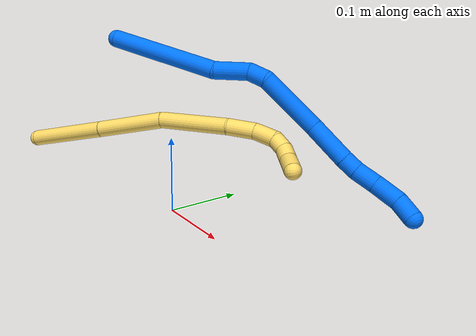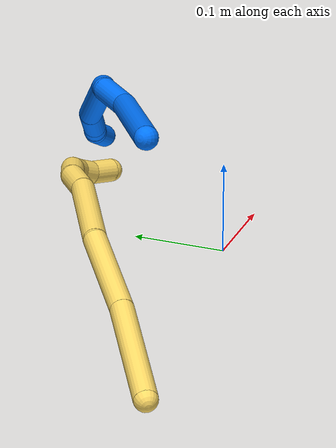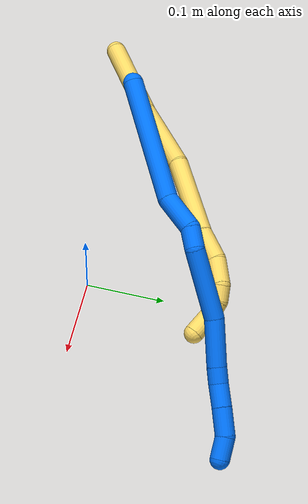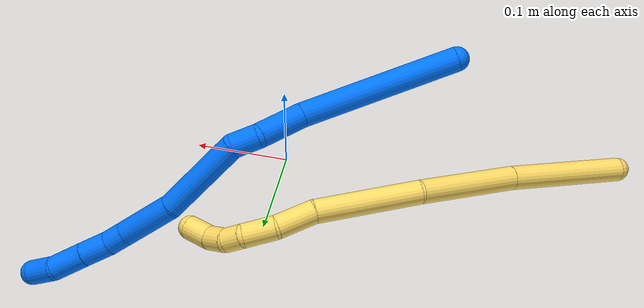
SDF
<sdf version="1.7">
 <world name="default">
  <model name="photoneo_s_sensor">
   <static>1</static>
   <pose>0 0 2 1.57079 1.57079 3.14159</pose>
   <link name="link">
    <inertial><mass>0.1</mass></inertial>
    <sensor name="sensor" type="depth">
     <update_rate>30</update_rate>
     <camera>
      <horizontal_fov>1.22</horizontal_fov>
      <image><width>1920</width><height>1200</height><format>B8G8R8</format></image>
      <clip><near>0.1</near><far>4</far></clip>
      <depth_camera><output>points</output></depth_camera>
     </camera>
     <plugin name="camera_plugin" filename="libgazebo_ros_depth_camera.so">
      <baseline>0.2</baseline>
      <alwaysOn>1</alwaysOn>
      <updateRate>0.0</updateRate>
      <cameraName>camera_ir</cameraName>
      <imageTopicName>/camera/color/image_raw</imageTopicName>
      <cameraInfoTopicName>/camera/color/camera_info</cameraInfoTopicName>
      <depthImageTopicName>/camera/depth/image_raw</depthImageTopicName>
      <depthImageCameraInfoTopicName>/camera/depth/camera_info</depthImageCameraInfoTopicName>
      <pointCloudTopicName>/camera/depth/points</pointCloudTopicName>
      <frameName>fr_optical</frameName>
      <pointCloudCutoff>0.1</pointCloudCutoff>
      <pointCloudCutoffMax>2.0</pointCloudCutoffMax>
      <distortionK1>0</distortionK1>
      <distortionK2>0</distortionK2>
      <distortionK3>0</distortionK3>
      <distortionT1>0</distortionT1>
      <distortionT2>0</distortionT2>
      <CxPrime>0</CxPrime>
      <Cx>0</Cx>
      <Cy>0</Cy>
      <focalLength>0</focalLength>
      <hackBaseline>0</hackBaseline>
     </plugin>
    </sensor>
   </link>
  </model>
  <model name="bin">
   <static>1</static>
   <link name="bottom">
    <collision name="collision-bottom">
     <pose>0 0 -0.01 0 -0 0</pose>
     <geometry><box><size>0.8 0.6 0.02</size></box></geometry>
     <surface>
      <friction><ode><mu>100</mu><mu2>100</mu2></ode></friction>
      <contact><collide_bitmask>65535</collide_bitmask></contact>
     </surface>
    </collision>
   </link>
   <link name="west_wall">
    <collision name="collision-west_wall">
     <pose>-0.41 0 0.1 0 -0 0</pose>
     <geometry><box><size>0.02 0.6 0.2</size></box></geometry>
     <surface>
      <friction><ode><mu>100</mu><mu2>100</mu2></ode></friction>
      <contact><collide_bitmask>65535</collide_bitmask></contact>
     </surface>
    </collision>
   </link>
   <link name="east_wall">
    <collision name="collision-east_wall">
     <pose>0.41 0 0.1 0 -0 0</pose>
     <geometry><box><size>0.02 0.6 0.2</size></box></geometry>
     <surface>
      <friction><ode><mu>100</mu><mu2>100</mu2></ode></friction>
      <contact><collide_bitmask>65535</collide_bitmask></contact>
     </surface>
    </collision>
   </link>
   <link name="south_wall">
    <collision name="collision-south_wall">
     <pose>0 -0.31 0.1 0 -0 0</pose>
     <geometry><box><size>0.8 0.02 0.2</size></box></geometry>
     <surface>
      <friction><ode><mu>100</mu><mu2>100</mu2></ode></friction>
      <contact><collide_bitmask>65535</collide_bitmask></contact>
     </surface>
    </collision>
   </link>
   <link name="north_wall">
    <collision name="collision-north_wall">
     <pose>0 0.31 0.1 0 -0 0</pose>
     <geometry><box><size>0.8 0.02 0.2</size></box></geometry>
     <surface>
      <friction><ode><mu>100</mu><mu2>100</mu2></ode></friction>
      <contact><collide_bitmask>65535</collide_bitmask></contact>
     </surface>
    </collision>
   </link>
  </model>
  <model name="5">
   <static>0</static>
   <link name="5">
    <collision name="collision-cylinder-e_1_1_4">
     <pose>0.003058 -0.003305 0.065628 0.050324 0.046498 0.00117</pose>
     <geometry><cylinder><radius>0.0125</radius><length>0.131564</length></cylinder></geometry>
     <surface>
      <friction><ode><mu>1.16</mu><mu2>1.16</mu2><slip1>0</slip1><slip2>0</slip2></ode></friction>
      <contact><ode><kp>1e+06</kp><kd>1</kd><max_vel>0</max_vel><min_depth>0.001</min_depth></ode></contact>
     </surface>
    </collision>
    <visual name="visual-cylinder-e_1_1_4">
     <pose>0.003058 -0.003305 0.065628 0.050324 0.046498 0.00117</pose>
     <geometry><cylinder><radius>0.0125</radius><length>0.131564</length></cylinder></geometry>
     <material><ambient>1 0.858824 0.4 1</ambient></material>
    </visual>
    <collision name="collision-cylinder-e_2_4_5">
     <pose>0.005292 -0.006835 0.186494 0.004054 -0.014897 -3e-05</pose>
     <geometry><cylinder><radius>0.0125</radius><length>0.11049</length></cylinder></geometry>
     <surface>
      <friction><ode><mu>1.16</mu><mu2>1.16</mu2><slip1>0</slip1><slip2>0</slip2></ode></friction>
      <contact><ode><kp>1e+06</kp><kd>1</kd><max_vel>0</max_vel><min_depth>0.001</min_depth></ode></contact>
     </surface>
    </collision>
    <visual name="visual-cylinder-e_2_4_5">
     <pose>0.005292 -0.006835 0.186494 0.004054 -0.014897 -3e-05</pose>
     <geometry><cylinder><radius>0.0125</radius><length>0.11049</length></cylinder></geometry>
     <material><ambient>1 0.858824 0.4 1</ambient></material>
    </visual>
    <collision name="collision-cylinder-e_3_5_6">
     <pose>0.015431 -0.001981 0.296345 -0.092704 0.197256 -0.009179</pose>
     <geometry><cylinder><radius>0.0125</radius><length>0.111866</length></cylinder></geometry>
     <surface>
      <friction><ode><mu>1.16</mu><mu2>1.16</mu2><slip1>0</slip1><slip2>0</slip2></ode></friction>
      <contact><ode><kp>1e+06</kp><kd>1</kd><max_vel>0</max_vel><min_depth>0.001</min_depth></ode></contact>
     </surface>
    </collision>
    <visual name="visual-cylinder-e_3_5_6">
     <pose>0.015431 -0.001981 0.296345 -0.092704 0.197256 -0.009179</pose>
     <geometry><cylinder><radius>0.0125</radius><length>0.111866</length></cylinder></geometry>
     <material><ambient>1 0.858824 0.4 1</ambient></material>
    </visual>
    <collision name="collision-cylinder-e_4_6_7">
     <pose>0.028753 0.008896 0.3707 -0.285747 0.114207 -0.016447</pose>
     <geometry><cylinder><radius>0.0125</radius><length>0.041423</length></cylinder></geometry>
     <surface>
      <friction><ode><mu>1.16</mu><mu2>1.16</mu2><slip1>0</slip1><slip2>0</slip2></ode></friction>
      <contact><ode><kp>1e+06</kp><kd>1</kd><max_vel>0</max_vel><min_depth>0.001</min_depth></ode></contact>
     </surface>
    </collision>
    <visual name="visual-cylinder-e_4_6_7">
     <pose>0.028753 0.008896 0.3707 -0.285747 0.114207 -0.016447</pose>
     <geometry><cylinder><radius>0.0125</radius><length>0.041423</length></cylinder></geometry>
     <material><ambient>1 0.858824 0.4 1</ambient></material>
    </visual>
    <collision name="collision-cylinder-e_5_7_8">
     <pose>0.03782 0.018473 0.405423 -0.246986 0.409586 -0.051551</pose>
     <geometry><cylinder><radius>0.0125</radius><length>0.033684</length></cylinder></geometry>
     <surface>
      <friction><ode><mu>1.16</mu><mu2>1.16</mu2><slip1>0</slip1><slip2>0</slip2></ode></friction>
      <contact><ode><kp>1e+06</kp><kd>1</kd><max_vel>0</max_vel><min_depth>0.001</min_depth></ode></contact>
     </surface>
    </collision>
    <visual name="visual-cylinder-e_5_7_8">
     <pose>0.03782 0.018473 0.405423 -0.246986 0.409586 -0.051551</pose>
     <geometry><cylinder><radius>0.0125</radius><length>0.033684</length></cylinder></geometry>
     <material><ambient>1 0.858824 0.4 1</ambient></material>
    </visual>
    <collision name="collision-cylinder-e_6_8_9">
     <pose>0.051832 0.025497 0.426662 -0.478535 0.803002 -0.206401</pose>
     <geometry><cylinder><radius>0.0125</radius><length>0.020306</length></cylinder></geometry>
     <surface>
      <friction><ode><mu>1.16</mu><mu2>1.16</mu2><slip1>0</slip1><slip2>0</slip2></ode></friction>
      <contact><ode><kp>1e+06</kp><kd>1</kd><max_vel>0</max_vel><min_depth>0.001</min_depth></ode></contact>
     </surface>
    </collision>
    <visual name="visual-cylinder-e_6_8_9">
     <pose>0.051832 0.025497 0.426662 -0.478535 0.803002 -0.206401</pose>
     <geometry><cylinder><radius>0.0125</radius><length>0.020306</length></cylinder></geometry>
     <material><ambient>1 0.858824 0.4 1</ambient></material>
    </visual>
    <collision name="collision-cylinder-e_7_9_10">
     <pose>0.069226 0.029459 0.43709 -0.169827 1.17392 -0.113114</pose>
     <geometry><cylinder><radius>0.0125</radius><length>0.021881</length></cylinder></geometry>
     <surface>
      <friction><ode><mu>1.16</mu><mu2>1.16</mu2><slip1>0</slip1><slip2>0</slip2></ode></friction>
      <contact><ode><kp>1e+06</kp><kd>1</kd><max_vel>0</max_vel><min_depth>0.001</min_depth></ode></contact>
     </surface>
    </collision>
    <visual name="visual-cylinder-e_7_9_10">
     <pose>0.069226 0.029459 0.43709 -0.169827 1.17392 -0.113114</pose>
     <geometry><cylinder><radius>0.0125</radius><length>0.021881</length></cylinder></geometry>
     <material><ambient>1 0.858824 0.4 1</ambient></material>
    </visual>
    <collision name="collision-cylinder-e_8_10_2">
     <pose>0.092268 0.02724 0.446808 0.48632 1.11945 0.308396</pose>
     <geometry><cylinder><radius>0.0125</radius><length>0.028787</length></cylinder></geometry>
     <surface>
      <friction><ode><mu>1.16</mu><mu2>1.16</mu2><slip1>0</slip1><slip2>0</slip2></ode></friction>
      <contact><ode><kp>1e+06</kp><kd>1</kd><max_vel>0</max_vel><min_depth>0.001</min_depth></ode></contact>
     </surface>
    </collision>
    <visual name="visual-cylinder-e_8_10_2">
     <pose>0.092268 0.02724 0.446808 0.48632 1.11945 0.308396</pose>
     <geometry><cylinder><radius>0.0125</radius><length>0.028787</length></cylinder></geometry>
     <material><ambient>1 0.858824 0.4 1</ambient></material>
    </visual>
    <collision name="collision-sphere-2">
     <pose>0.10522 0.024306 0.452358 0 -0 0</pose>
     <geometry><sphere><radius>0.0125</radius></sphere></geometry>
     <surface>
      <friction><ode><mu>1.16</mu><mu2>1.16</mu2><slip1>0</slip1><slip2>0</slip2></ode></friction>
      <contact><ode><kp>1e+06</kp><kd>1</kd><max_vel>0</max_vel><min_depth>0.001</min_depth></ode></contact>
     </surface>
    </collision>
    <visual name="visual-sphere-2">
     <pose>0.10522 0.024306 0.452358 0 -0 0</pose>
     <geometry><sphere><radius>0.0125</radius></sphere></geometry>
     <material><ambient>1 0.858824 0.4 1</ambient></material>
    </visual>
    <collision name="collision-sphere-10">
     <pose>0.079316 0.030174 0.441258 0 -0 0</pose>
     <geometry><sphere><radius>0.0125</radius></sphere></geometry>
     <surface>
      <friction><ode><mu>1.16</mu><mu2>1.16</mu2><slip1>0</slip1><slip2>0</slip2></ode></friction>
      <contact><ode><kp>1e+06</kp><kd>1</kd><max_vel>0</max_vel><min_depth>0.001</min_depth></ode></contact>
     </surface>
    </collision>
    <visual name="visual-sphere-10">
     <pose>0.079316 0.030174 0.441258 0 -0 0</pose>
     <geometry><sphere><radius>0.0125</radius></sphere></geometry>
     <material><ambient>1 0.858824 0.4 1</ambient></material>
    </visual>
    <collision name="collision-sphere-9">
     <pose>0.059136 0.028744 0.432922 0 -0 0</pose>
     <geometry><sphere><radius>0.0125</radius></sphere></geometry>
     <surface>
      <friction><ode><mu>1.16</mu><mu2>1.16</mu2><slip1>0</slip1><slip2>0</slip2></ode></friction>
      <contact><ode><kp>1e+06</kp><kd>1</kd><max_vel>0</max_vel><min_depth>0.001</min_depth></ode></contact>
     </surface>
    </collision>
    <visual name="visual-sphere-9">
     <pose>0.059136 0.028744 0.432922 0 -0 0</pose>
     <geometry><sphere><radius>0.0125</radius></sphere></geometry>
     <material><ambient>1 0.858824 0.4 1</ambient></material>
    </visual>
    <collision name="collision-sphere-4">
     <pose>0.006115 -0.006611 0.131255 0 -0 0</pose>
     <geometry><sphere><radius>0.0125</radius></sphere></geometry>
     <surface>
      <friction><ode><mu>1.16</mu><mu2>1.16</mu2><slip1>0</slip1><slip2>0</slip2></ode></friction>
      <contact><ode><kp>1e+06</kp><kd>1</kd><max_vel>0</max_vel><min_depth>0.001</min_depth></ode></contact>
     </surface>
    </collision>
    <visual name="visual-sphere-4">
     <pose>0.006115 -0.006611 0.131255 0 -0 0</pose>
     <geometry><sphere><radius>0.0125</radius></sphere></geometry>
     <material><ambient>1 0.858824 0.4 1</ambient></material>
    </visual>
    <collision name="collision-sphere-1">
     <geometry><sphere><radius>0.0125</radius></sphere></geometry>
     <surface>
      <friction><ode><mu>1.16</mu><mu2>1.16</mu2><slip1>0</slip1><slip2>0</slip2></ode></friction>
      <contact><ode><kp>1e+06</kp><kd>1</kd><max_vel>0</max_vel><min_depth>0.001</min_depth></ode></contact>
     </surface>
    </collision>
    <visual name="visual-sphere-1">
     <geometry><sphere><radius>0.0125</radius></sphere></geometry>
     <material><ambient>1 0.858824 0.4 1</ambient></material>
    </visual>
    <collision name="collision-sphere-8">
     <pose>0.044527 0.02225 0.420403 0 -0 0</pose>
     <geometry><sphere><radius>0.0125</radius></sphere></geometry>
     <surface>
      <friction><ode><mu>1.16</mu><mu2>1.16</mu2><slip1>0</slip1><slip2>0</slip2></ode></friction>
      <contact><ode><kp>1e+06</kp><kd>1</kd><max_vel>0</max_vel><min_depth>0.001</min_depth></ode></contact>
     </surface>
    </collision>
    <visual name="visual-sphere-8">
     <pose>0.044527 0.02225 0.420403 0 -0 0</pose>
     <geometry><sphere><radius>0.0125</radius></sphere></geometry>
     <material><ambient>1 0.858824 0.4 1</ambient></material>
    </visual>
    <collision name="collision-sphere-5">
     <pose>0.004469 -0.007059 0.241732 0 -0 0</pose>
     <geometry><sphere><radius>0.0125</radius></sphere></geometry>
     <surface>
      <friction><ode><mu>1.16</mu><mu2>1.16</mu2><slip1>0</slip1><slip2>0</slip2></ode></friction>
      <contact><ode><kp>1e+06</kp><kd>1</kd><max_vel>0</max_vel><min_depth>0.001</min_depth></ode></contact>
     </surface>
    </collision>
    <visual name="visual-sphere-5">
     <pose>0.004469 -0.007059 0.241732 0 -0 0</pose>
     <geometry><sphere><radius>0.0125</radius></sphere></geometry>
     <material><ambient>1 0.858824 0.4 1</ambient></material>
    </visual>
    <collision name="collision-sphere-6">
     <pose>0.026393 0.003096 0.350958 0 -0 0</pose>
     <geometry><sphere><radius>0.0125</radius></sphere></geometry>
     <surface>
      <friction><ode><mu>1.16</mu><mu2>1.16</mu2><slip1>0</slip1><slip2>0</slip2></ode></friction>
      <contact><ode><kp>1e+06</kp><kd>1</kd><max_vel>0</max_vel><min_depth>0.001</min_depth></ode></contact>
     </surface>
    </collision>
    <visual name="visual-sphere-6">
     <pose>0.026393 0.003096 0.350958 0 -0 0</pose>
     <geometry><sphere><radius>0.0125</radius></sphere></geometry>
     <material><ambient>1 0.858824 0.4 1</ambient></material>
    </visual>
    <collision name="collision-sphere-7">
     <pose>0.031113 0.014696 0.390443 0 -0 0</pose>
     <geometry><sphere><radius>0.0125</radius></sphere></geometry>
     <surface>
      <friction><ode><mu>1.16</mu><mu2>1.16</mu2><slip1>0</slip1><slip2>0</slip2></ode></friction>
      <contact><ode><kp>1e+06</kp><kd>1</kd><max_vel>0</max_vel><min_depth>0.001</min_depth></ode></contact>
     </surface>
    </collision>
    <visual name="visual-sphere-7">
     <pose>0.031113 0.014696 0.390443 0 -0 0</pose>
     <geometry><sphere><radius>0.0125</radius></sphere></geometry>
     <material><ambient>1 0.858824 0.4 1</ambient></material>
    </visual>
    <inertial>
     <pose>0.020803 0.003051 0.244984 0 -0 0</pose>
     <mass>0.5</mass>
     <inertia><ixx>0.000452</ixx><ixy>0</ixy><ixz>0</ixz><iyy>0.00045</iyy><iyz>0</iyz><izz>-8e-06</izz></inertia>
    </inertial>
   </link>
   <pose>-0.354997 -0.052224 0.012982 -1.30611 0.516296 -0.809574</pose>
  </model>
  <model name="14">
   <static>0</static>
   <link name="14">
    <collision name="collision-cylinder-e_1_1_4">
     <pose>0.049314 -0.010872 -0.062938 2.97053 0.657499 2.64912</pose>
     <geometry><cylinder><radius>0.0125</radius><length>0.161385</length></cylinder></geometry>
     <surface>
      <friction><ode><mu>1.16</mu><mu2>1.16</mu2><slip1>0</slip1><slip2>0</slip2></ode></friction>
      <contact><ode><kp>1e+06</kp><kd>1</kd><max_vel>0</max_vel><min_depth>0.001</min_depth></ode></contact>
     </surface>
    </collision>
    <visual name="visual-cylinder-e_1_1_4">
     <pose>0.049314 -0.010872 -0.062938 2.97053 0.657499 2.64912</pose>
     <geometry><cylinder><radius>0.0125</radius><length>0.161385</length></cylinder></geometry>
     <material><ambient>0 0.462745 1 1</ambient></material>
    </visual>
    <collision name="collision-cylinder-e_2_4_5">
     <pose>0.118297 -0.028904 -0.138695 2.63226 0.929531 2.18383</pose>
     <geometry><cylinder><radius>0.0125</radius><length>0.049089</length></cylinder></geometry>
     <surface>
      <friction><ode><mu>1.16</mu><mu2>1.16</mu2><slip1>0</slip1><slip2>0</slip2></ode></friction>
      <contact><ode><kp>1e+06</kp><kd>1</kd><max_vel>0</max_vel><min_depth>0.001</min_depth></ode></contact>
     </surface>
    </collision>
    <visual name="visual-cylinder-e_2_4_5">
     <pose>0.118297 -0.028904 -0.138695 2.63226 0.929531 2.18383</pose>
     <geometry><cylinder><radius>0.0125</radius><length>0.049089</length></cylinder></geometry>
     <material><ambient>0 0.462745 1 1</ambient></material>
    </visual>
    <collision name="collision-cylinder-e_3_5_6">
     <pose>0.145549 -0.036544 -0.162745 3.09883 0.593485 3.00193</pose>
     <geometry><cylinder><radius>0.0125</radius><length>0.02712</length></cylinder></geometry>
     <surface>
      <friction><ode><mu>1.16</mu><mu2>1.16</mu2><slip1>0</slip1><slip2>0</slip2></ode></friction>
      <contact><ode><kp>1e+06</kp><kd>1</kd><max_vel>0</max_vel><min_depth>0.001</min_depth></ode></contact>
     </surface>
    </collision>
    <visual name="visual-cylinder-e_3_5_6">
     <pose>0.145549 -0.036544 -0.162745 3.09883 0.593485 3.00193</pose>
     <geometry><cylinder><radius>0.0125</radius><length>0.02712</length></cylinder></geometry>
     <material><ambient>0 0.462745 1 1</ambient></material>
    </visual>
    <collision name="collision-cylinder-e_4_6_7">
     <pose>0.179915 -0.019995 -0.205076 -2.64061 0.646908 -1.83773</pose>
     <geometry><cylinder><radius>0.0125</radius><length>0.088872</length></cylinder></geometry>
     <surface>
      <friction><ode><mu>1.16</mu><mu2>1.16</mu2><slip1>0</slip1><slip2>0</slip2></ode></friction>
      <contact><ode><kp>1e+06</kp><kd>1</kd><max_vel>0</max_vel><min_depth>0.001</min_depth></ode></contact>
     </surface>
    </collision>
    <visual name="visual-cylinder-e_4_6_7">
     <pose>0.179915 -0.019995 -0.205076 -2.64061 0.646908 -1.83773</pose>
     <geometry><cylinder><radius>0.0125</radius><length>0.088872</length></cylinder></geometry>
     <material><ambient>0 0.462745 1 1</ambient></material>
    </visual>
    <collision name="collision-cylinder-e_5_7_8">
     <pose>0.219348 0.005914 -0.261284 -2.80168 0.443467 -1.84031</pose>
     <geometry><cylinder><radius>0.0125</radius><length>0.058966</length></cylinder></geometry>
     <surface>
      <friction><ode><mu>1.16</mu><mu2>1.16</mu2><slip1>0</slip1><slip2>0</slip2></ode></friction>
      <contact><ode><kp>1e+06</kp><kd>1</kd><max_vel>0</max_vel><min_depth>0.001</min_depth></ode></contact>
     </surface>
    </collision>
    <visual name="visual-cylinder-e_5_7_8">
     <pose>0.219348 0.005914 -0.261284 -2.80168 0.443467 -1.84031</pose>
     <geometry><cylinder><radius>0.0125</radius><length>0.058966</length></cylinder></geometry>
     <material><ambient>0 0.462745 1 1</ambient></material>
    </visual>
    <collision name="collision-cylinder-e_6_8_9">
     <pose>0.237015 0.017536 -0.295297 -2.84281 0.493845 -2.065</pose>
     <geometry><cylinder><radius>0.0125</radius><length>0.021166</length></cylinder></geometry>
     <surface>
      <friction><ode><mu>1.16</mu><mu2>1.16</mu2><slip1>0</slip1><slip2>0</slip2></ode></friction>
      <contact><ode><kp>1e+06</kp><kd>1</kd><max_vel>0</max_vel><min_depth>0.001</min_depth></ode></contact>
     </surface>
    </collision>
    <visual name="visual-cylinder-e_6_8_9">
     <pose>0.237015 0.017536 -0.295297 -2.84281 0.493845 -2.065</pose>
     <geometry><cylinder><radius>0.0125</radius><length>0.021166</length></cylinder></geometry>
     <material><ambient>0 0.462745 1 1</ambient></material>
    </visual>
    <collision name="collision-cylinder-e_7_9_10">
     <pose>0.249546 0.021716 -0.316683 -3.02696 0.539038 -2.73197</pose>
     <geometry><cylinder><radius>0.0125</radius><length>0.029277</length></cylinder></geometry>
     <surface>
      <friction><ode><mu>1.16</mu><mu2>1.16</mu2><slip1>0</slip1><slip2>0</slip2></ode></friction>
      <contact><ode><kp>1e+06</kp><kd>1</kd><max_vel>0</max_vel><min_depth>0.001</min_depth></ode></contact>
     </surface>
    </collision>
    <visual name="visual-cylinder-e_7_9_10">
     <pose>0.249546 0.021716 -0.316683 -3.02696 0.539038 -2.73197</pose>
     <geometry><cylinder><radius>0.0125</radius><length>0.029277</length></cylinder></geometry>
     <material><ambient>0 0.462745 1 1</ambient></material>
    </visual>
    <collision name="collision-cylinder-e_8_10_11">
     <pose>0.265794 0.025505 -0.344464 -2.98904 0.513657 -2.57525</pose>
     <geometry><cylinder><radius>0.0125</radius><length>0.035549</length></cylinder></geometry>
     <surface>
      <friction><ode><mu>1.16</mu><mu2>1.16</mu2><slip1>0</slip1><slip2>0</slip2></ode></friction>
      <contact><ode><kp>1e+06</kp><kd>1</kd><max_vel>0</max_vel><min_depth>0.001</min_depth></ode></contact>
     </surface>
    </collision>
    <visual name="visual-cylinder-e_8_10_11">
     <pose>0.265794 0.025505 -0.344464 -2.98904 0.513657 -2.57525</pose>
     <geometry><cylinder><radius>0.0125</radius><length>0.035549</length></cylinder></geometry>
     <material><ambient>0 0.462745 1 1</ambient></material>
    </visual>
    <collision name="collision-cylinder-e_9_11_2">
     <pose>0.276841 0.030739 -0.373567 -2.9358 0.162635 -1.3363</pose>
     <geometry><cylinder><radius>0.0125</radius><length>0.028576</length></cylinder></geometry>
     <surface>
      <friction><ode><mu>1.16</mu><mu2>1.16</mu2><slip1>0</slip1><slip2>0</slip2></ode></friction>
      <contact><ode><kp>1e+06</kp><kd>1</kd><max_vel>0</max_vel><min_depth>0.001</min_depth></ode></contact>
     </surface>
    </collision>
    <visual name="visual-cylinder-e_9_11_2">
     <pose>0.276841 0.030739 -0.373567 -2.9358 0.162635 -1.3363</pose>
     <geometry><cylinder><radius>0.0125</radius><length>0.028576</length></cylinder></geometry>
     <material><ambient>0 0.462745 1 1</ambient></material>
    </visual>
    <collision name="collision-sphere-2">
     <pose>0.279154 0.03362 -0.387369 0 -0 0</pose>
     <geometry><sphere><radius>0.0125</radius></sphere></geometry>
     <surface>
      <friction><ode><mu>1.16</mu><mu2>1.16</mu2><slip1>0</slip1><slip2>0</slip2></ode></friction>
      <contact><ode><kp>1e+06</kp><kd>1</kd><max_vel>0</max_vel><min_depth>0.001</min_depth></ode></contact>
     </surface>
    </collision>
    <visual name="visual-sphere-2">
     <pose>0.279154 0.03362 -0.387369 0 -0 0</pose>
     <geometry><sphere><radius>0.0125</radius></sphere></geometry>
     <material><ambient>0 0.462745 1 1</ambient></material>
    </visual>
    <collision name="collision-sphere-11">
     <pose>0.274527 0.027858 -0.359765 0 -0 0</pose>
     <geometry><sphere><radius>0.0125</radius></sphere></geometry>
     <surface>
      <friction><ode><mu>1.16</mu><mu2>1.16</mu2><slip1>0</slip1><slip2>0</slip2></ode></friction>
      <contact><ode><kp>1e+06</kp><kd>1</kd><max_vel>0</max_vel><min_depth>0.001</min_depth></ode></contact>
     </surface>
    </collision>
    <visual name="visual-sphere-11">
     <pose>0.274527 0.027858 -0.359765 0 -0 0</pose>
     <geometry><sphere><radius>0.0125</radius></sphere></geometry>
     <material><ambient>0 0.462745 1 1</ambient></material>
    </visual>
    <collision name="collision-sphere-10">
     <pose>0.25706 0.023153 -0.329164 0 -0 0</pose>
     <geometry><sphere><radius>0.0125</radius></sphere></geometry>
     <surface>
      <friction><ode><mu>1.16</mu><mu2>1.16</mu2><slip1>0</slip1><slip2>0</slip2></ode></friction>
      <contact><ode><kp>1e+06</kp><kd>1</kd><max_vel>0</max_vel><min_depth>0.001</min_depth></ode></contact>
     </surface>
    </collision>
    <visual name="visual-sphere-10">
     <pose>0.25706 0.023153 -0.329164 0 -0 0</pose>
     <geometry><sphere><radius>0.0125</radius></sphere></geometry>
     <material><ambient>0 0.462745 1 1</ambient></material>
    </visual>
    <collision name="collision-sphere-9">
     <pose>0.242032 0.020279 -0.304203 0 -0 0</pose>
     <geometry><sphere><radius>0.0125</radius></sphere></geometry>
     <surface>
      <friction><ode><mu>1.16</mu><mu2>1.16</mu2><slip1>0</slip1><slip2>0</slip2></ode></friction>
      <contact><ode><kp>1e+06</kp><kd>1</kd><max_vel>0</max_vel><min_depth>0.001</min_depth></ode></contact>
     </surface>
    </collision>
    <visual name="visual-sphere-9">
     <pose>0.242032 0.020279 -0.304203 0 -0 0</pose>
     <geometry><sphere><radius>0.0125</radius></sphere></geometry>
     <material><ambient>0 0.462745 1 1</ambient></material>
    </visual>
    <collision name="collision-sphere-4">
     <pose>0.098629 -0.021745 -0.125876 0 -0 0</pose>
     <geometry><sphere><radius>0.0125</radius></sphere></geometry>
     <surface>
      <friction><ode><mu>1.16</mu><mu2>1.16</mu2><slip1>0</slip1><slip2>0</slip2></ode></friction>
      <contact><ode><kp>1e+06</kp><kd>1</kd><max_vel>0</max_vel><min_depth>0.001</min_depth></ode></contact>
     </surface>
    </collision>
    <visual name="visual-sphere-4">
     <pose>0.098629 -0.021745 -0.125876 0 -0 0</pose>
     <geometry><sphere><radius>0.0125</radius></sphere></geometry>
     <material><ambient>0 0.462745 1 1</ambient></material>
    </visual>
    <collision name="collision-sphere-1">
     <geometry><sphere><radius>0.0125</radius></sphere></geometry>
     <surface>
      <friction><ode><mu>1.16</mu><mu2>1.16</mu2><slip1>0</slip1><slip2>0</slip2></ode></friction>
      <contact><ode><kp>1e+06</kp><kd>1</kd><max_vel>0</max_vel><min_depth>0.001</min_depth></ode></contact>
     </surface>
    </collision>
    <visual name="visual-sphere-1">
     <geometry><sphere><radius>0.0125</radius></sphere></geometry>
     <material><ambient>0 0.462745 1 1</ambient></material>
    </visual>
    <collision name="collision-sphere-8">
     <pose>0.231999 0.014793 -0.286392 0 -0 0</pose>
     <geometry><sphere><radius>0.0125</radius></sphere></geometry>
     <surface>
      <friction><ode><mu>1.16</mu><mu2>1.16</mu2><slip1>0</slip1><slip2>0</slip2></ode></friction>
      <contact><ode><kp>1e+06</kp><kd>1</kd><max_vel>0</max_vel><min_depth>0.001</min_depth></ode></contact>
     </surface>
    </collision>
    <visual name="visual-sphere-8">
     <pose>0.231999 0.014793 -0.286392 0 -0 0</pose>
     <geometry><sphere><radius>0.0125</radius></sphere></geometry>
     <material><ambient>0 0.462745 1 1</ambient></material>
    </visual>
    <collision name="collision-sphere-5">
     <pose>0.137966 -0.036063 -0.151514 0 -0 0</pose>
     <geometry><sphere><radius>0.0125</radius></sphere></geometry>
     <surface>
      <friction><ode><mu>1.16</mu><mu2>1.16</mu2><slip1>0</slip1><slip2>0</slip2></ode></friction>
      <contact><ode><kp>1e+06</kp><kd>1</kd><max_vel>0</max_vel><min_depth>0.001</min_depth></ode></contact>
     </surface>
    </collision>
    <visual name="visual-sphere-5">
     <pose>0.137966 -0.036063 -0.151514 0 -0 0</pose>
     <geometry><sphere><radius>0.0125</radius></sphere></geometry>
     <material><ambient>0 0.462745 1 1</ambient></material>
    </visual>
    <collision name="collision-sphere-6">
     <pose>0.153133 -0.037025 -0.173976 0 -0 0</pose>
     <geometry><sphere><radius>0.0125</radius></sphere></geometry>
     <surface>
      <friction><ode><mu>1.16</mu><mu2>1.16</mu2><slip1>0</slip1><slip2>0</slip2></ode></friction>
      <contact><ode><kp>1e+06</kp><kd>1</kd><max_vel>0</max_vel><min_depth>0.001</min_depth></ode></contact>
     </surface>
    </collision>
    <visual name="visual-sphere-6">
     <pose>0.153133 -0.037025 -0.173976 0 -0 0</pose>
     <geometry><sphere><radius>0.0125</radius></sphere></geometry>
     <material><ambient>0 0.462745 1 1</ambient></material>
    </visual>
    <collision name="collision-sphere-7">
     <pose>0.206698 -0.002965 -0.236177 0 -0 0</pose>
     <geometry><sphere><radius>0.0125</radius></sphere></geometry>
     <surface>
      <friction><ode><mu>1.16</mu><mu2>1.16</mu2><slip1>0</slip1><slip2>0</slip2></ode></friction>
      <contact><ode><kp>1e+06</kp><kd>1</kd><max_vel>0</max_vel><min_depth>0.001</min_depth></ode></contact>
     </surface>
    </collision>
    <visual name="visual-sphere-7">
     <pose>0.206698 -0.002965 -0.236177 0 -0 0</pose>
     <geometry><sphere><radius>0.0125</radius></sphere></geometry>
     <material><ambient>0 0.462745 1 1</ambient></material>
    </visual>
    <inertial>
     <pose>0.152638 -0.005602 -0.186908 0 -0 0</pose>
     <mass>0.5</mass>
     <inertia>
      <ixx>-0.00019</ixx>
      <ixy>0</ixy>
      <ixz>0</ixz>
      <iyy>0.000456</iyy>
      <iyz>0</iyz>
      <izz>-0.00029</izz>
     </inertia>
    </inertial>
   </link>
   <pose>-0.18018 0.016084 0.201182 -1.27713 0.162073 1.44608</pose>
  </model>
 </world>
</sdf>
